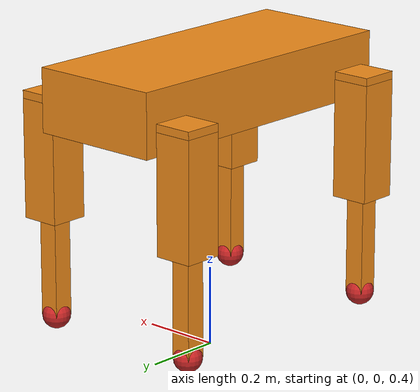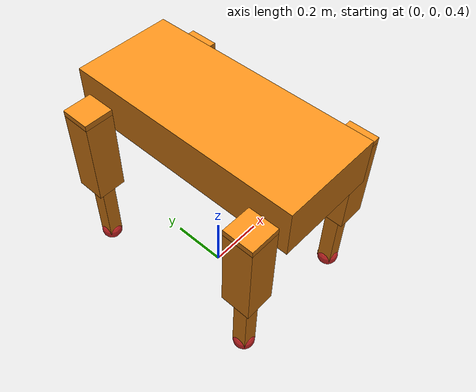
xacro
<?xml version="1.0"?>
<!-- Revolute-Revolute Manipulator -->
<robot name="quadruped" xmlns:xacro="http://www.ros.org/wiki/xacro">

  <!-- Load Files -->
  <xacro:include filename="$(find quadruped_description)/urdf/leg.xacro" />

<!-- Gazebo robot_cog plugin -->
  <gazebo>
	<plugin name="robot_cog" filename="librobot_cog.so"/>
  </gazebo>

 <!-- Gazebo ros_control plugin -->
  <gazebo>
    <plugin name="gazebo_ros_control" filename="libgazebo_ros_control.so">
      <robotNamespace>/quadruped</robotNamespace>
      <robotSimType>gazebo_ros_control/DefaultRobotHWSim</robotSimType>
    </plugin>
  </gazebo>

  <!-- Constants for robot dimensions -->
  <xacro:property name="PI" value="3.1415926535897931"/>
  <xacro:property name="SQRT2" value="1.41421356237309"/>
  <xacro:property name="mass" value="44" /> <!-- arbitrary value for mass -->
  <xacro:property name="width_body" value="0.34" /> <!-- body width -->
  <xacro:property name="height_body" value="0.16" /> <!-- body height -->
  <xacro:property name="length_body" value="0.800" /> <!-- body length -->

  <!-- Used for fixing robot to Gazebo 'base_link' -->
  <link name="world"/>

  <joint name="worldframe" type="floating">
    <parent link="world"/>
    <child link="body"/>
    <origin xyz="0 0 1" rpy="0 0 0"/>
    <limit effort="30" velocity="1.0" lower="0.5" upper="1.2" />
  </joint>

  <!-- Base Link -->
  <link name="body">
    <collision>
      <origin xyz="0 0 ${height_body/2}" rpy="0 0 0"/>
      <geometry>
	<box size="${width_body} ${length_body} ${height_body}"/>
      </geometry>
    </collision>

    <visual>
      <origin xyz="0 0 ${height_body/2}" rpy="0 0 0"/>
      <geometry>
	<box size="${width_body} ${length_body} ${height_body}"/>
      </geometry>
      <material name="orange"/>
    </visual>

    <inertial>
      <origin xyz="0 0 ${height_body/2}" rpy="0 0 0"/>
      <mass value="${mass}"/>
      <inertia
	  ixx="${mass / 12.0 * (length_body*length_body + height_body*height_body)}" ixy="0.0" ixz="0.0"
	  iyy="${mass / 12.0 * (height_body*height_body + width_body*width_body)}" iyz="0.0"
	  izz="${mass / 12.0 * (width_body*width_body + length_body*length_body)}"/>
    </inertial>
  </link>

  <gazebo reference="body">
    <material>Gazebo/Orange</material>
  </gazebo>

<!-- Leg Macros -->
<xacro:leg side="rf" reflectx="-1" reflecty="-1" parent="body"/>
<xacro:leg side="lf" reflectx="1" reflecty="-1" parent="body"/>
<xacro:leg side="rb" reflectx="-1" reflecty="1" parent="body"/>
<xacro:leg side="lb" reflectx="1" reflecty="1" parent="body"/>

<gazebo reference="body">
  	<sensor name="body_contact_sensor" type="contact">
        <always_on>true</always_on>
	<update_rate>30</update_rate>
	<contact>
  	  <collision>body_collision</collision>
	</contact>
	<plugin name="bumper0_plugin" filename="libgazebo_ros_bumper.so">
  		<bumperTopicName>body_sensor_state</bumperTopicName>
  	<frameName>body</frameName>
	</plugin>
	</sensor>
</gazebo>

</robot>

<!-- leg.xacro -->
<!-- Thesis Quadruped Leg -->
<robot xmlns:xacro="http://www.ros.org/wiki/xacro">

  <xacro:property name="height_upperleg" value="0.3" /> <!-- UpperLeg Height -->
  <xacro:property name="height_lowerleg" value="0.25" /> <!-- LowerLeg Height -->
  <xacro:property name="height_foot" value="0.05" /> <!-- Foot Height -->
  <xacro:property name="height_roll" value="0.02"/> <!-- Invis Link Height -->

  <xacro:property name="height_leg" value="${height_upperleg+height_lowerleg+height_foot+height_roll}"/>

  <xacro:property name="width_leg" value="0.05" /> <!-- leg width -->

  <xacro:property name="mass_leg" value="5" /> <!-- leg width -->

  <xacro:property name="mass_upperleg" value="${mass_leg*0.65}"/>
  <xacro:property name="mass_lowerleg" value="${mass_leg*0.15}"/>
  <xacro:property name="mass_foot" value="${mass_leg*0.2}"/>
  <xacro:property name="mass_roll" value="${mass_leg*0.05}"/>

  <xacro:property name="jointdamping" value="1.2"/>
  <xacro:property name="jointeffort" value="1e20"/>
  <xacro:property name="jointvelocity" value="1e6"/>

<xacro:macro name="leg" params="side reflectx reflecty parent">

<!-- Shoulder Joint -->

<joint type="revolute" name="${side}_roll_shoulder">
        	<parent link = "${parent}"/>
        	<child link = "${side}_invis"/>
		<origin xyz = "${(width_body+width_leg*2)/2*reflectx} ${0.636/2*reflecty}  ${height_body/2}" rpy="0 0 0"/>
		<!--origin xyz = "${(0.22)/2*reflectx} ${0.636/2*reflecty}  0" rpy="0 0 0"/-->
        	<axis xyz = "0 1 0"/>
		<dynamics damping="${jointdamping}"/>
		<limit effort="${jointeffort}" velocity="${jointvelocity}" lower="${-0.3}" upper="${0.3}"/>
		<safety_controller k_velocity="10" k_position="15" soft_lower_limit="${-PI/3+0.1}" soft_upper_limit="${PI/3+0.1}" />
	</joint>

<!-- Invisible Roll Link -->
   <link name="${side}_invis">

		<collision>
          	  <origin xyz="0 0 ${-height_roll/2}" rpy="0 0 0"/>
                  <geometry>
	            <box size="${width_leg*2} ${width_leg*2} ${height_roll}"/>
                  </geometry>
		</collision>

          	<visual>
          	  <origin xyz="0 0 ${-height_roll/2}" rpy="0 0 0"/>
                  <geometry>
	            <box size="${width_leg*2} ${width_leg*2} ${height_roll}"/>
                  </geometry>
		  <material name="orange"/>
		</visual>

		<inertial>
	          <origin xyz="0 0 ${-height_roll/2}" rpy="0 0 0"/>
	          <mass value="${mass_roll}"/>
	         <inertia
		    ixx="${mass_roll / 12.0 * (width_leg*width_leg + height_roll*height_roll)}" ixy="0.0" ixz="0.0"
		    iyy="${mass_roll / 12.0 * (height_roll*height_roll + width_leg*width_leg)}" iyz="0.0"
		    izz="${mass_roll / 12.0 * (width_leg*width_leg + width_leg*width_leg)}"/>
		</inertial>

  </link>

<joint type="revolute" name="${side}_shoulder">
        	<parent link = "${side}_invis"/>
        	<child link = "${side}_upperleg"/>
		<!--origin xyz = "${0.220/2*reflectx} ${0.636/2*reflecty}  0" rpy="0 0 0"/-->
		<origin xyz = "0 0 ${-height_roll}" rpy="0 0 0"/>
        	<axis xyz = "1 0 0"/>
		<dynamics damping="${jointdamping}"/>
		<limit effort="${jointeffort}" velocity="${jointvelocity}" lower="${-PI/2}" upper="${PI/2}"/>
		<safety_controller k_velocity="10" k_position="15" soft_lower_limit="${-PI/2+0.1}" soft_upper_limit="${PI/2+0.1}" />
	</joint>

<!-- Upper Leg-->
   <link name="${side}_upperleg">
          	<collision>
          	  <origin xyz="0 0 ${-height_upperleg/2}" rpy="0 0 0"/>
                  <geometry>
	            <box size="${width_leg*2} ${width_leg*2} ${height_upperleg}"/>
                  </geometry>
		</collision>

		<visual>
          	  <origin xyz="0 0 ${-height_upperleg/2}" rpy="0 0 0"/>
                  <geometry>
	            <box size="${width_leg*2} ${width_leg*2} ${height_upperleg}"/>
                  </geometry>
		  <material name="orange"/>
		</visual>

		<inertial>
	          <origin xyz="0 0 ${-height_upperleg/2}" rpy="0 0 0"/>
	          <mass value="${mass_upperleg}"/>
	          <inertia
		    ixx="${mass_upperleg / 12.0 * (width_leg*width_leg + height_upperleg*height_upperleg)}" ixy="0.0" ixz="0.0"
		    iyy="${mass_upperleg / 12.0 * (height_upperleg*height_upperleg + width_leg*width_leg)}" iyz="0.0"
		    izz="${mass_upperleg / 12.0 * (width_leg*width_leg + width_leg*width_leg)}"/>
		</inertial>

  </link>

<!-- Knee Joint-->

	<joint type="revolute" name="${side}_knee">
        	<parent link = "${side}_upperleg"/>
        	<child link = "${side}_lowerleg"/>
		<origin xyz = "0 0 ${-height_upperleg}" rpy="0 0 0"/>
        	<axis xyz="1 0 0"/>
		<dynamics damping="${jointdamping}"/>
		<limit effort="${jointeffort}" velocity="${jointvelocity}" lower="${-PI/2}" upper="${PI/2}"/>
		<safety_controller k_velocity="10" k_position="15" soft_lower_limit="${-PI/2+0.1}" soft_upper_limit="${PI/2+0.1}" />
       </joint>

<!-- Lower Leg-->
   <link name="${side}_lowerleg">
          	<collision>
          	  <origin xyz="0 0 -${height_lowerleg/2}" rpy="0 0 0"/>
                  <geometry>
	            <box size="${width_leg} ${width_leg} ${height_lowerleg}"/>
                  </geometry>
		</collision>

		<visual>
          	  <origin xyz="0 0 -${height_lowerleg/2}" rpy="0 0 0"/>
                  <geometry>
	            <box size="${width_leg} ${width_leg} ${height_lowerleg}"/>
                  </geometry>
		</visual>

		<inertial>
	          <origin xyz="0 0 -${height_lowerleg/2}" rpy="0 0 0"/>
	          <mass value="${mass_lowerleg}"/>
	          <inertia
		    ixx="${mass_lowerleg / 12.0 * (width_leg*width_leg + height_lowerleg*height_lowerleg)}" ixy="0.0" ixz="0.0"
		    iyy="${mass_lowerleg / 12.0 * (height_lowerleg*height_lowerleg + width_leg*width_leg)}" iyz="0.0"
		    izz="${mass_lowerleg / 12.0 * (width_leg*width_leg + width_leg*width_leg)}"/>
		</inertial>

  </link>

<!-- Ankle Joint-->

	<joint type="revolute" name="${side}_ankle">
        	<parent link = "${side}_lowerleg"/>
        	<child link = "${side}_foot"/>
		<origin xyz = "0 0 ${-height_lowerleg}" rpy="0 0 0"/>
        	<axis xyz="1 0 0"/>
		<dynamics damping="${jointdamping}"/>
		<limit effort="${jointeffort}" velocity="${jointvelocity}"/>
		<safety_controller k_velocity="10" k_position="15" soft_lower_limit="${-PI/3+0.1}" soft_upper_limit="${PI/3+0.1}" />
       </joint>

<!-- Foot-->
   <link name="${side}_foot">
          	<collision name="${side}_foot_collision">
          	  <!--origin xyz="0 0 -${height_foot/2}" rpy="0 0 0"/-->
		  <origin xyz="0 0 0" rpy="0 0 0"/>
                  <geometry>
	            <!--box size="${width_leg} ${width_leg} ${height_foot}"/-->
		    <sphere radius="${width_leg*SQRT2/2}"/>
                  </geometry>
		</collision>

		<visual>
          	  <!--origin xyz="0 0 -${height_foot/2}" rpy="0 0 0"/-->
		  <origin xyz="0 0 0" rpy="0 0 0"/>
                  <geometry>
	            <!--box size="${width_leg} ${width_leg} ${height_foot}"/-->
		    <sphere radius="${width_leg*SQRT2/2}"/>
                  </geometry>
		</visual>

		<inertial>
	          <!--origin xyz="0 0 -${height_foot/2}" rpy="0 0 0"/-->
		  <origin xyz="0 0 0" rpy="0 0 0"/>
	          <mass value="${mass_foot}"/>
	          <inertia
		    ixx="${mass_foot / 12.0 * (width_leg*width_leg + height_foot*height_foot)}" ixy="0.0" ixz="0.0"
		    iyy="${mass_foot / 12.0 * (height_foot*height_foot + width_leg*width_leg)}" iyz="0.0"
		    izz="${mass_foot / 12.0 * (width_leg*width_leg + width_leg*width_leg)}"/>
		</inertial>

  </link>

<!-- Gazebo Contact Sensors -->
<gazebo reference="${side}_foot">
  	<sensor name="${side}_foot_contact_sensor" type="contact">
        <always_on>true</always_on>
	<update_rate>30</update_rate>
	<contact>
  	  <collision>${side}_foot_collision</collision>
	</contact>
	<plugin name="bumper0_plugin" filename="libgazebo_ros_bumper.so">
  		<bumperTopicName>${side}_foot_sensor_state</bumperTopicName>
  	<frameName>${side}_foot</frameName>
	</plugin>
	</sensor>
</gazebo>

<!-- Gazebo Color -->
  <gazebo reference="${side}_upperleg">
    <material>Gazebo/Black</material>
  </gazebo>

  <gazebo reference="${side}_lowerleg">
    <material>Gazebo/Orange</material>
  </gazebo>

  <gazebo reference="${side}_foot">
    <material>Gazebo/Red</material>
  </gazebo>

<!-- Transmissions -->

<transmission name="${side}_tran_shoulder_roll">
    <type>transmission_interface/SimpleTransmission</type>
    <joint name="${side}_roll_shoulder">
      <hardwareInterface>EffortJointInterface</hardwareInterface>
    </joint>
    <actuator name="${side}_motor_roll_shoulder">
      <hardwareInterface>EffortJointInterface</hardwareInterface>
      <mechanicalReduction>100</mechanicalReduction>
    </actuator>
  </transmission>

<transmission name="${side}_tran_shoulder">
    <type>transmission_interface/SimpleTransmission</type>
    <joint name="${side}_shoulder">
      <hardwareInterface>EffortJointInterface</hardwareInterface>
    </joint>
    <actuator name="${side}_motor_shoulder">
      <hardwareInterface>EffortJointInterface</hardwareInterface>
      <mechanicalReduction>100</mechanicalReduction>
    </actuator>
  </transmission>

<transmission name="${side}_tran_knee">
    <type>transmission_interface/SimpleTransmission</type>
    <joint name="${side}_knee">
      <hardwareInterface>EffortJointInterface</hardwareInterface>
    </joint>
    <actuator name="${side}_motor_knee">
      <hardwareInterface>EffortJointInterface</hardwareInterface>
      <mechanicalReduction>100</mechanicalReduction>
    </actuator>
  </transmission>

<transmission name="${side}_tran_ankle">
    <type>transmission_interface/SimpleTransmission</type>
    <joint name="${side}_ankle">
      <hardwareInterface>EffortJointInterface</hardwareInterface>
    </joint>
    <actuator name="${side}_motor_ankle">
      <hardwareInterface>EffortJointInterface</hardwareInterface>
      <mechanicalReduction>100</mechanicalReduction>
    </actuator>
  </transmission>

  </xacro:macro>

</robot>
